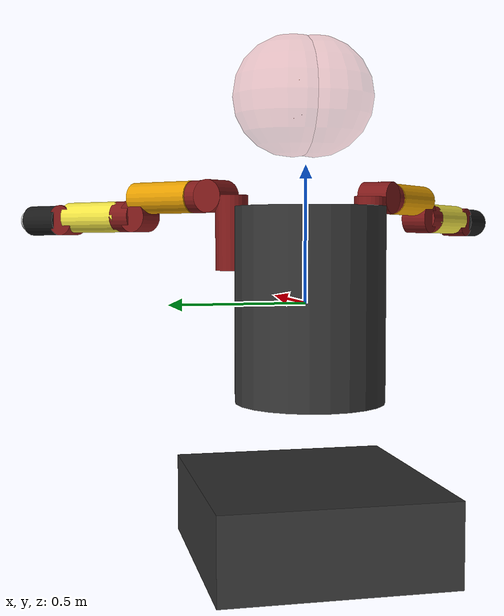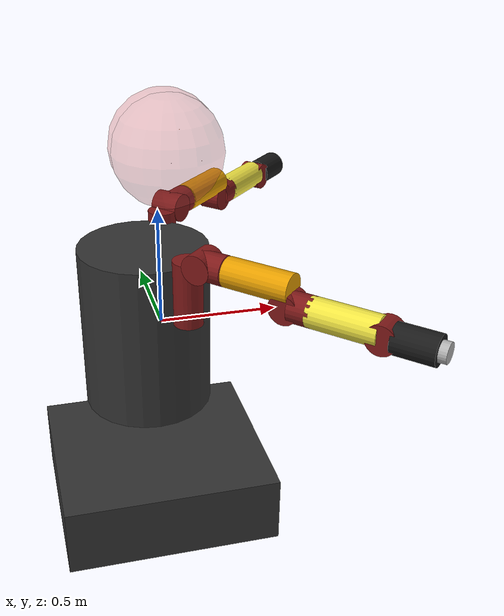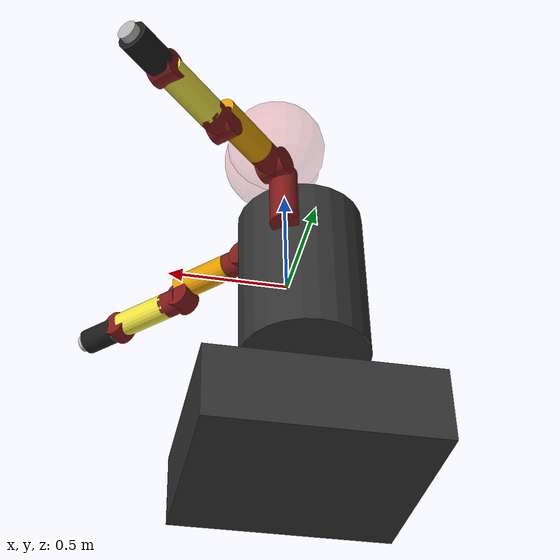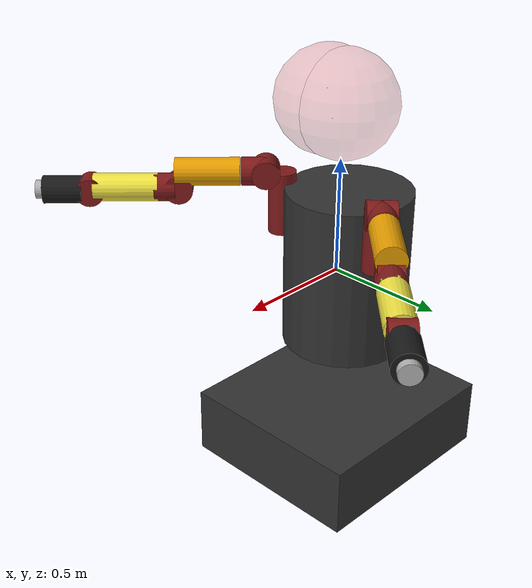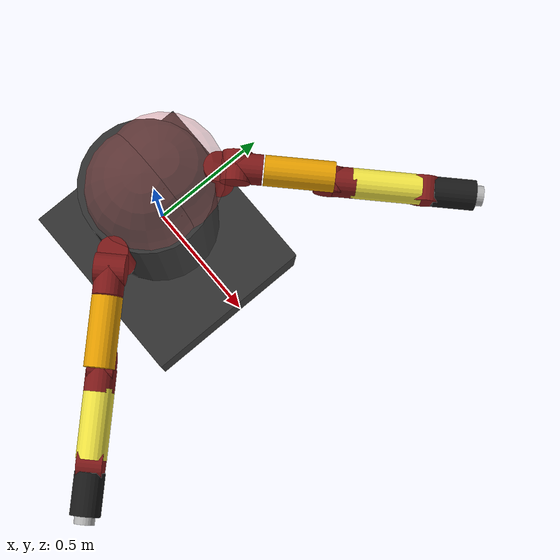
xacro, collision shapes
<?xml version="1.0" ?>
<robot name="baxter" xmlns:xacro="http://www.ros.org/wiki/xacro">

  <xacro:arg name="left_reflex"     default="false"/>
  <xacro:arg name="left_gripper"    default="false"/>
  <xacro:arg name="left_ft_sensor"  default="false"/>
  <xacro:arg name="left_push_stick" default="false"/>

  <xacro:arg name="right_reflex"     default="false"/>
  <xacro:arg name="right_gripper"    default="false"/>
  <xacro:arg name="right_ft_sensor"  default="false"/>
  <xacro:arg name="right_push_stick" default="false"/>

  <xacro:arg name="baxter_sensors" default="false"/>

  <xacro:arg name="gazebo"         default="true"/>
  <xacro:arg name="use_sim_force"  default="true"/>

  <!-- Baxter robot -->
  <xacro:include filename="$(find ll4ma_robots_description)/urdf/baxter/baxter.urdf.xacro"/>

  <!-- Baxter grippers -->
  <xacro:if value="$(arg left_gripper)">
    <include filename="$(find ll4ma_robots_description)/urdf/baxter/baxter_left_gripper.xacro"/>
  </xacro:if>
  <xacro:if value="$(arg right_gripper)">
    <include filename="$(find ll4ma_robots_description)/urdf/baxter/baxter_right_gripper.xacro"/>
  </xacro:if>

  <!-- Reflex hand -->
  <xacro:if value="$(arg left_reflex)">
    <!-- Hand  -->
    <xacro:include filename="$(find ll4ma_robots_description)/urdf/reflex/reflex.urdf.xacro"/>
    <!-- Mount -->
    <xacro:include
	filename="$(find ll4ma_robots_description)/urdf/mounts/baxter_reflex_mount.urdf.xacro">
      <xacro:arg name="left_reflex"  value="true"/>
      <xacro:arg name="right_reflex" value="false"/>
    </xacro:include>
  </xacro:if>
  <xacro:if value="$(arg right_reflex)">
    <!-- Hand  -->
    <xacro:include filename="$(find ll4ma_robots_description)/urdf/reflex/reflex.urdf.xacro"/>
    <!-- Mount -->
    <xacro:include
	filename="$(find ll4ma_robots_description)/urdf/mounts/baxter_reflex_mount.urdf.xacro">
      <xacro:arg name="left_reflex"  value="false"/>
      <xacro:arg name="right_reflex" value="true"/>
    </xacro:include>
  </xacro:if>

  <!-- Optoforce force sensor -->
  <xacro:if value="$(arg left_ft_sensor)">
    <xacro:include
  	filename="$(find ll4ma_robots_description)/urdf/force_sensors/optoforce_sensor.urdf.xacro"/>
    <xacro:include
	filename="$(find ll4ma_robots_description)/urdf/mounts/baxter_optoforce_mount.urdf.xacro"/>

    <xacro:baxter_optoforce_mount/>

    <joint name="baxter_to_optoforce_mount" type="fixed">
      <origin xyz="0 0 0" rpy="0 0 0" />
      <parent link="left_hand" />
      <child link="baxter_optoforce_mount_link" />
    </joint>

    <joint name="optoforce_mount_to_optoforce" type="fixed">
      <origin xyz="0 0 0" rpy="0 0 ${pi}" />
      <parent link="baxter_optoforce_mount_link" />
      <child link="optoforce_model_link" />
    </joint>

  </xacro:if>

  <xacro:if value="$(arg right_ft_sensor)">
    <xacro:include
  	filename="$(find ll4ma_robots_description)/urdf/force_sensors/optoforce_sensor.urdf.xacro"/>
    <xacro:include
	filename="$(find ll4ma_robots_description)/urdf/mounts/baxter_optoforce_mount.urdf.xacro"/>

    <xacro:baxter_optoforce_mount/>

    <joint name="baxter_to_optoforce_mount" type="fixed">
      <origin xyz="-0.013 0 0" rpy="0 0 -${pi/2}" />
      <parent link="right_hand" />
      <child link="baxter_optoforce_mount_link" />
    </joint>

    <joint name="optoforce_mount_to_optoforce" type="fixed">
      <origin xyz="0 0 0.01" rpy="0 0 ${-0.825 + pi}" />
      <parent link="baxter_optoforce_mount_link" />
      <child link="optoforce_model_link" />
    </joint>

  </xacro:if>

  <!-- Push stick -->
  <xacro:if value="$(arg left_push_stick)">
    <xacro:include
	filename="$(find ll4ma_robots_description)/urdf/end_effectors/push_stick.urdf.xacro"/>

    <xacro:unless value="$(arg left_ft_sensor)">
      <xacro:include
	  filename="$(find ll4ma_robots_description)/urdf/mounts/baxter_push_stick_mount.urdf.xacro"/>

      <xacro:baxter_push_stick_mount/>
      <xacro:push_stick/>

      <joint name="baxter_mount_to_push_stick" type="fixed">
	<origin xyz="-0.0837 -0.028 -0.0685" rpy="0 0.6 0" />
	<parent link="baxter_push_stick_mount_link" />
	<child link="push_stick_link" />
      </joint>

    </xacro:unless>

    <xacro:if value="$(arg left_ft_sensor)">
      <xacro:include
	  filename="$(find ll4ma_robots_description)/urdf/mounts/optoforce_push_stick_mount.urdf.xacro"/>
      <xacro:optoforce_push_stick_mount/>
      <xacro:push_stick/>

      <joint name="optoforce_to_push_stick_mount" type="fixed">
      	<origin xyz="0 0 0.015" rpy="0 0 0" />
      	<parent link="optoforce_model_link" />
      	<child link="optoforce_push_stick_mount_link" />
      </joint>

      <joint name="optoforce_mount_to_push_stick" type="fixed">
	<origin xyz="0 0 0.0051" rpy="${pi/2} 0 0" />
	<parent link="optoforce_push_stick_mount_link" />
	<child link="push_stick_link" />
      </joint>

    </xacro:if>
  </xacro:if>

  <xacro:if value="$(arg right_push_stick)">
    <xacro:include
	filename="$(find ll4ma_robots_description)/urdf/end_effectors/push_stick.urdf.xacro"/>

    <xacro:unless value="$(arg right_ft_sensor)">
      <xacro:include
	  filename="$(find ll4ma_robots_description)/urdf/mounts/baxter_push_stick_mount.urdf.xacro"/>

      <xacro:baxter_push_stick_mount/>
      <xacro:push_stick/>

      <joint name="baxter_mount_to_push_stick" type="fixed">
	<origin xyz="-0.0837 -0.028 -0.0685" rpy="0 0.6 0" />
	<parent link="baxter_push_stick_mount_link" />
	<child link="push_stick_link" />
      </joint>

    </xacro:unless>

    <xacro:if value="$(arg right_ft_sensor)">
      <xacro:include
	  filename="$(find ll4ma_robots_description)/urdf/mounts/optoforce_push_stick_mount.urdf.xacro"/>
      <xacro:optoforce_push_stick_mount/>
      <xacro:push_stick/>

      <joint name="optoforce_to_push_stick_mount" type="fixed">
      	<origin xyz="0 0 0.035" rpy="0 0 0" />
      	<parent link="optoforce_model_link" />
      	<child link="optoforce_push_stick_mount_link" />
      </joint>

      <joint name="optoforce_mount_to_push_stick" type="fixed">
	<origin xyz="0 0 0.01" rpy="0 0 0" />
	<parent link="optoforce_push_stick_mount_link" />
	<child link="push_stick_link" />
      </joint>

    </xacro:if>
  </xacro:if>

  <!-- Gazebo -->
  <xacro:if value="$(arg gazebo)">
    <xacro:include filename="$(find ll4ma_robots_description)/urdf/baxter/baxter.gazebo.xacro">
      <xacro:arg name="ft_sensor"      value="$(arg ft_sensor)"/>
      <xacro:arg name="use_sim_force"  value="$(arg use_sim_force)"/>
      <xacro:arg name="left_gripper"   value="$(arg left_gripper)"/>
      <xacro:arg name="right_gripper"  value="$(arg right_gripper)"/>
      <xacro:arg name="baxter_sensors" value="$(arg baxter_sensors)"/>
    </xacro:include>
  </xacro:if>

</robot>

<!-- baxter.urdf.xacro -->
<!-- URDF pulled from parameter server for Baxter 1 (left robot, SN:011305P0014)  -->
<!-- in Large Robotics Lab.                                                       -->
<robot xmlns:xacro="http://www.ros.org/wiki/xacro" name="baxter">

  <!-- ================================= Links ================================= -->

  <link name="base">
    <inertial>
      <origin rpy="0 0 0" xyz="0 0 0"/>
      <mass value="0.0001"/>
      <inertia ixx="1e-08" ixy="0" ixz="0" iyy="1e-08" iyz="0" izz="1e-08"/>
    </inertial>
  </link>

  <link name="torso">
    <visual>
      <origin rpy="0 0 0" xyz="0 0 0"/>
      <geometry>
        <mesh filename="package://ll4ma_robots_description/meshes/baxter/body/base_link.dae"/>
      </geometry>
      <material name="darkgray">
        <color rgba=".2 .2 .2 1"/>
      </material>
    </visual>
    <collision>
      <origin rpy="0 0 0" xyz="-0.065 0 0.0"/>
      <geometry>
        <cylinder length="0.7" radius="0.27"/>
      </geometry>
    </collision>
    <inertial>
      <origin rpy="0 0 0" xyz="0.000000 0.000000 0.000000"/>
      <mass value="35.336455"/>
      <inertia ixx="1.849155" ixy="-0.000354" ixz="-0.154188"
	       iyy="1.662671" iyz="0.003292" izz="0.802239"/>
    </inertial>
  </link>

  <link name="left_torso_itb">
    <inertial>
      <origin rpy="0 0 0" xyz="0.000000 0.000000 0.000000"/>
      <mass value="0.0001"/>
      <inertia ixx="1e-08" ixy="0" ixz="0" iyy="1e-08" iyz="0" izz="1e-08"/>
    </inertial>
  </link>

  <link name="right_torso_itb">
    <inertial>
      <origin rpy="0 0 0" xyz="0.000000 0.000000 0.000000"/>
      <mass value="0.0001"/>
      <inertia ixx="1e-08" ixy="0" ixz="0" iyy="1e-08" iyz="0" izz="1e-08"/>
    </inertial>
  </link>

  <link name="head">
    <visual>
      <origin rpy="0 0 0" xyz="0 0 .00953"/>
      <geometry>
        <mesh filename="package://ll4ma_robots_description/meshes/baxter/head/h0.dae"/>
      </geometry>
      <material name="darkgray">
        <color rgba=".2 .2 .2 1"/>
      </material>
    </visual>
    <collision>
      <origin rpy="0 0 0" xyz="0.0 0 0.0"/>
      <geometry>
        <sphere radius="0.001"/>
      </geometry>
    </collision>
    <inertial>
      <origin rpy="0 0 0" xyz="0 0 0"/>
      <mass value="0.547767"/>
      <inertia ixx="0.004641" ixy="0.000159" ixz="0.000242"
	       iyy="0.003295" iyz="-0.001324" izz="0.003415"/>
    </inertial>
  </link>

  <link name="sonar_ring">
    <collision>
      <origin rpy="0 0 0" xyz="0.0 0 0.0"/>
      <geometry>
        <sphere radius="0.001"/>
      </geometry>
    </collision>
    <inertial>
      <origin rpy="0 0 0" xyz="0 0 0"/>
      <mass value="0.0001"/>
      <inertia ixx="1e-08" ixy="0" ixz="0" iyy="1e-08" iyz="0" izz="1e-08"/>
    </inertial>
  </link>

  <link name="screen">
    <visual>
      <origin rpy="0 -1.57079632679 0" xyz="0 -.00953 -.0347"/>
      <geometry>
        <mesh filename="package://ll4ma_robots_description/meshes/baxter/head/h1.dae"/>
      </geometry>
      <material name="darkred">
        <color rgba=".5 .1 .1 1"/>
      </material>
    </visual>
    <collision>
      <origin rpy="0 0 0" xyz="0.0 0 0.0"/>
      <geometry>
        <sphere radius="0.001"/>
      </geometry>
    </collision>
    <inertial>
      <origin rpy="0 0 0" xyz="0 0 0"/>
      <mass value="0.440171"/>
      <inertia ixx="0.004006" ixy="0.000230" ixz="0.000002"
	       iyy="0.002800" iyz="0.000029" izz="0.001509"/>
    </inertial>
  </link>

  <link name="display">
    <inertial>
      <origin rpy="0 0 0" xyz="0 0 0"/>
      <mass value="0.0001"/>
      <inertia ixx="1e-08" ixy="0" ixz="0" iyy="1e-08" iyz="0" izz="1e-08"/>
    </inertial>
  </link>

  <link name="head_camera">
    <inertial>
      <origin rpy="0 0 0" xyz="0 0 0"/>
      <mass value="0.0001"/>
      <inertia ixx="1e-08" ixy="0" ixz="0" iyy="1e-08" iyz="0" izz="1e-08"/>
    </inertial>
  </link>

  <link name="dummyhead1">
    <inertial>
      <origin rpy="0 0 0" xyz="0 0 0"/>
      <mass value="0.0001"/>
      <inertia ixx="1e-08" ixy="0" ixz="0" iyy="1e-08" iyz="0" izz="1e-08"/>
    </inertial>
  </link>

  <link name="collision_head_link_1">
    <visual>
      <origin rpy="0 0 0" xyz="0 0 0"/>
      <geometry>
        <sphere radius="0.001"/>
      </geometry>
      <material name="red">
        <color rgba="0.8 0.3 0.3 0.3"/>
      </material>
    </visual>
    <collision>
      <origin rpy="0 0 0.0" xyz="-0.07 -0.04 0.0"/>
      <geometry>
        <sphere radius="0.22"/>
      </geometry>
    </collision>
    <inertial>
      <origin rpy="0 0 0" xyz="0 0 0"/>
      <mass value="0.0001"/>
      <inertia ixx="1e-08" ixy="0" ixz="0" iyy="1e-08" iyz="0" izz="1e-08"/>
    </inertial>
  </link>

  <link name="collision_head_link_2">
    <visual>
      <origin rpy="0 0 0" xyz="0 0 0"/>
      <geometry>
        <sphere radius="0.001"/>
      </geometry>
      <material name="red">
        <color rgba="0.8 0.3 0.3 0.3"/>
      </material>
    </visual>
    <collision>
      <origin rpy="0 0 0" xyz="-0.07 0.04 0.00"/>
      <geometry>
        <sphere radius="0.22"/>
      </geometry>
    </collision>
    <inertial>
      <origin rpy="0 0 0" xyz="0 0 0"/>
      <mass value="0.0001"/>
      <inertia ixx="1e-08" ixy="0" ixz="0" iyy="1e-08" iyz="0" izz="1e-08"/>
    </inertial>
  </link>

  <link name="right_arm_mount">
    <!-- all defaults -->
    <inertial>
      <origin rpy="0 0 0" xyz="0 0 0"/>
      <mass value="0.0001"/>
      <inertia ixx="1e-08" ixy="0" ixz="0" iyy="1e-08" iyz="0" izz="1e-08"/>
    </inertial>
  </link>

  <link name="right_upper_shoulder">
    <visual>
      <origin rpy="0 0 0" xyz="0 0 0"/>
      <geometry>
        <mesh filename="package://ll4ma_robots_description/meshes/baxter/arms/s0.dae"/>
      </geometry>
      <material name="darkred">
        <color rgba=".5 .1 .1 1"/>
      </material>
    </visual>
    <collision>
      <origin rpy="0 0 0" xyz="0 0 0.1361"/>
      <geometry>
        <cylinder length="0.2722" radius="0.06"/>
      </geometry>
    </collision>
    <inertial>
      <origin rpy="0 0 0" xyz="0.01783 0.00086 0.19127"/>
      <mass value="5.70044"/>
      <inertia ixx="0.04709102262" ixy="0.00012787556" ixz="0.00614870039"
	       iyy="0.03766976455" iyz="0.00078086899" izz="0.03595988478"/>
    </inertial>
  </link>

  <link name="right_lower_shoulder">
    <visual>
      <origin rpy="0 0 0" xyz="0 0 0"/>
      <geometry>
        <mesh filename="package://ll4ma_robots_description/meshes/baxter/arms/s1.dae"/>
      </geometry>
      <material name="darkred">
        <color rgba=".5 .1 .1 1"/>
      </material>
    </visual>
    <collision>
      <origin rpy="0 0 0" xyz="0 0 0"/>
      <geometry>
        <cylinder length="0.12" radius="0.06"/>
      </geometry>
    </collision>
    <inertial>
      <origin rpy="0 0 0" xyz="0.06845 0.00269 -0.00529"/>
      <mass value="3.22698"/>
      <inertia ixx="0.01175209419" ixy="-0.00030096398" ixz="0.00207675762"
	       iyy="0.0278859752" iyz="-0.00018821993" izz="0.02078749298"/>
    </inertial>
  </link>

  <link name="right_upper_elbow">
    <visual>
      <origin rpy="0 0 0" xyz="0 0 0"/>
      <geometry>
        <mesh filename="package://ll4ma_robots_description/meshes/baxter/arms/e0.dae"/>
      </geometry>
      <material name="darkred">
        <color rgba=".5 .1 .1 1"/>
      </material>
    </visual>
    <collision>
      <origin rpy="0 0 0" xyz="0 0 -0.0535"/>
      <geometry>
        <cylinder length="0.107" radius="0.06"/>
      </geometry>
    </collision>
    <inertial>
      <origin rpy="0 0 0" xyz="-0.00276 0.00132 0.18086"/>
      <mass value="4.31272"/>
      <inertia ixx="0.02661733557" ixy="0.00029270634" ixz="0.00392189887"
	       iyy="0.02844355207" iyz="0.0010838933" izz="0.01248008322"/>
    </inertial>
  </link>

  <link name="right_upper_elbow_visual">
    <collision>
      <origin rpy="0 0 0" xyz="0 0 0.1365"/>
      <geometry>
        <cylinder length="0.273" radius="0.06"/>
      </geometry>
    </collision>
    <inertial>
      <origin rpy="0 0 0" xyz="0 0 0"/>
      <mass value="0.0001"/>
      <inertia ixx="1e-08" ixy="0" ixz="0" iyy="1e-08" iyz="0" izz="1e-08"/>
    </inertial>
  </link>

  <link name="right_lower_elbow">
    <visual>
      <origin rpy="0 0 0" xyz="0 0 0"/>
      <geometry>
        <mesh filename="package://ll4ma_robots_description/meshes/baxter/arms/e1.dae"/>
      </geometry>
      <material name="darkred">
        <color rgba=".5 .1 .1 1"/>
      </material>
    </visual>
    <collision>
      <origin rpy="0 0 0" xyz="0.0 0.0 0.0"/>
      <geometry>
        <cylinder length="0.10" radius="0.06"/>
      </geometry>
    </collision>
    <inertial>
      <origin rpy="0 0 0" xyz="0.02611 0.00159 -0.01117"/>
      <mass value="2.07206"/>
      <inertia ixx="0.00711582686" ixy="0.00036036173" ixz="0.0007459496"
	       iyy="0.01318227876" iyz="-0.00019663418" izz="0.00926852064"/>
    </inertial>
  </link>

  <link name="right_upper_forearm">
    <visual>
      <origin rpy="0 0 0" xyz="0 0 0"/>
      <geometry>
        <mesh filename="package://ll4ma_robots_description/meshes/baxter/arms/w0.dae"/>
      </geometry>
      <material name="darkred">
        <color rgba=".5 .1 .1 1"/>
      </material>
    </visual>
    <collision>
      <origin rpy="0 0 0" xyz="0 0 -0.044"/>
      <geometry>
        <cylinder length="0.088" radius="0.06"/>
      </geometry>
    </collision>
    <inertial>
      <origin rpy="0 0 0" xyz="-0.00168 0.0046 0.13952"/>
      <mass value="2.24665"/>
      <inertia ixx="0.01667742825" ixy="0.00018403705" ixz="0.00018657629"
	       iyy="0.01675457264" iyz="-0.00064732352" izz="0.0037463115"/>
    </inertial>
  </link>

  <link name="right_upper_forearm_visual">
    <collision>
      <origin rpy="0 0 0" xyz="0 0 0.136"/>
      <geometry>
        <cylinder length="0.272" radius="0.06"/>
      </geometry>
    </collision>
    <inertial>
      <origin rpy="0 0 0" xyz="0 0 0"/>
      <mass value="0.0001"/>
      <inertia ixx="1e-08" ixy="0" ixz="0" iyy="1e-08" iyz="0" izz="1e-08"/>
    </inertial>
  </link>

  <link name="right_arm_itb">
    <inertial>
      <origin rpy="0 0 0" xyz="0.000000 0.000000 0.000000"/>
      <mass value="0.0001"/>
      <inertia ixx="1e-08" ixy="0" ixz="0" iyy="1e-08" iyz="0" izz="1e-08"/>
    </inertial>
  </link>

  <link name="right_lower_forearm">
    <visual>
      <origin rpy="0 0 0" xyz="0 0 0"/>
      <geometry>
        <mesh filename="package://ll4ma_robots_description/meshes/baxter/arms/w1.dae"/>
      </geometry>
      <material name="darkred">
        <color rgba=".5 .1 .1 1"/>
      </material>
    </visual>
    <collision>
      <origin rpy="0 0 0" xyz="0 0 0"/>
      <geometry>
        <cylinder length="0.10" radius="0.06"/>
      </geometry>
    </collision>
    <inertial>
      <origin rpy="0 0 0" xyz="0.06041 0.00697 0.006"/>
      <mass value="1.60979"/>
      <inertia ixx="0.00387607152" ixy="-0.00044384784" ixz="-0.00021115038"
	       iyy="0.00700537914" iyz="0.00015348067" izz="0.0055275524"/>
    </inertial>
  </link>

  <link name="right_wrist">
    <visual>
      <origin rpy="0 0 0" xyz="0 0 0"/>
      <geometry>
        <mesh filename="package://ll4ma_robots_description/meshes/baxter/arms/w2.dae"/>
      </geometry>
      <material name="lightgrey">
        <color rgba=".1 .1 .1 1"/>
      </material>
    </visual>
    <collision>
      <origin rpy="0 0 0" xyz="0 0 0"/>
      <geometry>
        <cylinder length="0.165" radius="0.06"/>
      </geometry>
    </collision>
    <inertial>
      <origin rpy="0 0 0" xyz="0.00198 0.00125 0.01855"/>
      <mass value="0.35093"/>
      <inertia ixx="0.00025289155" ixy="0.00000575311" ixz="-0.00000159345"
	       iyy="0.0002688601" iyz="-0.00000519818" izz="0.0003074118"/>
    </inertial>
  </link>

  <link name="right_hand">
    <collision>
      <origin rpy="0 0 0" xyz="0 0 -0.0232"/>
      <geometry>
        <cylinder length="0.0464" radius="0.04"/>
      </geometry>
    </collision>
    <inertial>
      <origin rpy="0 0 0" xyz="0.01093 0.00042 -0.01532"/>
      <mass value="0.19125"/>
      <inertia ixx="0.00017588" ixy="0.00000147073" ixz="0.0000243633"
	       iyy="0.00021166377" iyz="0.00000172689" izz="0.00023745397"/>
    </inertial>
  </link>

  <link name="right_hand_camera">
    <inertial>
      <origin rpy="0 0 0" xyz="0 0 0"/>
      <mass value="0.0001"/>
      <inertia ixx="1e-08" ixy="0" ixz="0" iyy="1e-08" iyz="0" izz="1e-08"/>
    </inertial>
  </link>
  <link name="right_hand_camera_axis">
    <origin xyz="0 0 0" rpy="0 0 0" />
    <geometry>
      <cylinder radius="0.02" length="0.01" />
    </geometry>
    <material name="blue">
      <color rgba="0 0 1 0.8" />
    </material>
    <inertial>
      <origin rpy="0 0 0" xyz="0 0 0"/>
      <mass value="0.0001"/>
      <inertia ixx="1e-08" ixy="0" ixz="0" iyy="1e-08" iyz="0" izz="1e-08"/>
    </inertial>
  </link>

  <link name="right_hand_range">
    <inertial>
      <origin rpy="0 0 0" xyz="0 0 0"/>
      <mass value="0.0001"/>
      <inertia ixx="1e-08" ixy="0" ixz="0" iyy="1e-08" iyz="0" izz="1e-08"/>
    </inertial>
  </link>

  <link name="right_hand_accelerometer">
    <inertial>
      <origin rpy="0 0 0" xyz="0.000000 0.000000 0.000000"/>
      <mass value="0.0001"/>
      <inertia ixx="1e-08" ixy="0" ixz="0" iyy="1e-08" iyz="0" izz="1e-08"/>
    </inertial>
  </link>

  <link name="left_arm_mount">
    <!-- all defaults -->
    <inertial>
      <origin rpy="0 0 0" xyz="0 0 0"/>
      <mass value="0.0001"/>
      <inertia ixx="1e-08" ixy="0" ixz="0" iyy="1e-08" iyz="0" izz="1e-08"/>
    </inertial>
  </link>

  <link name="left_upper_shoulder">
    <visual>
      <origin rpy="0 0 0" xyz="0 0 0"/>
      <geometry>
        <mesh filename="package://ll4ma_robots_description/meshes/baxter/arms/s0.dae"/>
      </geometry>
      <material name="darkred">
        <color rgba=".5 .1 .1 1"/>
      </material>
    </visual>
    <collision>
      <origin rpy="0 0 0" xyz="0 0 0.1361"/>
      <geometry>
        <cylinder length="0.2722" radius="0.06"/>
      </geometry>
    </collision>
    <inertial>
      <origin rpy="0 0 0" xyz="0.01783 0.00086 0.19127"/>
      <mass value="5.70044"/>
      <inertia ixx="0.04709102262" ixy="0.00012787556" ixz="0.00614870039"
	       iyy="0.03766976455" iyz="0.00078086899" izz="0.03595988478"/>
    </inertial>
  </link>

  <link name="left_lower_shoulder">
    <visual>
      <origin rpy="0 0 0" xyz="0 0 0"/>
      <geometry>
        <mesh filename="package://ll4ma_robots_description/meshes/baxter/arms/s1.dae"/>
      </geometry>
      <material name="darkred">
        <color rgba=".5 .1 .1 1"/>
      </material>
    </visual>
    <collision>
      <origin rpy="0 0 0" xyz="0 0 0"/>
      <geometry>
        <cylinder length="0.12" radius="0.06"/>
      </geometry>
    </collision>
    <inertial>
      <origin rpy="0 0 0" xyz="0.06845 0.00269 -0.00529"/>
      <mass value="3.22698"/>
      <inertia ixx="0.01175209419" ixy="-0.00030096398" ixz="0.00207675762"
	       iyy="0.0278859752" iyz="-0.00018821993" izz="0.02078749298"/>
    </inertial>
  </link>

  <link name="left_upper_elbow">
    <visual>
      <origin rpy="0 0 0" xyz="0 0 0"/>
      <geometry>
        <mesh filename="package://ll4ma_robots_description/meshes/baxter/arms/e0.dae"/>
      </geometry>
      <material name="darkred">
        <color rgba=".5 .1 .1 1"/>
      </material>
    </visual>
    <collision>
      <origin rpy="0 0 0" xyz="0 0 -0.0535"/>
      <geometry>
        <cylinder length="0.107" radius="0.06"/>
      </geometry>
    </collision>
    <inertial>
      <origin rpy="0 0 0" xyz="-0.00276 0.00132 0.18086"/>
      <mass value="4.31272"/>
      <inertia ixx="0.02661733557" ixy="0.00029270634" ixz="0.00392189887"
	       iyy="0.02844355207" iyz="0.0010838933" izz="0.01248008322"/>
    </inertial>
  </link>

  <link name="left_upper_elbow_visual">
    <collision>
      <origin rpy="0 0 0" xyz="0 0 0.1365"/>
      <geometry>
        <cylinder length="0.273" radius="0.06"/>
      </geometry>
    </collision>
    <inertial>
      <origin rpy="0 0 0" xyz="0 0 0"/>
      <mass value="0.0001"/>
      <inertia ixx="1e-08" ixy="0" ixz="0" iyy="1e-08" iyz="0" izz="1e-08"/>
    </inertial>
  </link>

  <link name="left_lower_elbow">
    <visual>
      <origin rpy="0 0 0" xyz="0 0 0"/>
      <geometry>
        <mesh filename="package://ll4ma_robots_description/meshes/baxter/arms/e1.dae"/>
      </geometry>
      <material name="darkred">
        <color rgba=".5 .1 .1 1"/>
      </material>
    </visual>
    <collision>
      <origin rpy="0 0 0" xyz="0.0 0.0 0.0"/>
      <geometry>
        <cylinder length="0.10" radius="0.06"/>
      </geometry>
    </collision>
    <inertial>
      <origin rpy="0 0 0" xyz="0.02611 0.00159 -0.01117"/>
      <mass value="2.07206"/>
      <inertia ixx="0.00711582686" ixy="0.00036036173" ixz="0.0007459496"
	       iyy="0.01318227876" iyz="-0.00019663418" izz="0.00926852064"/>
    </inertial>
  </link>

  <link name="left_upper_forearm">
    <visual>
      <origin rpy="0 0 0" xyz="0 0 0"/>
      <geometry>
        <mesh filename="package://ll4ma_robots_description/meshes/baxter/arms/w0.dae"/>
      </geometry>
      <material name="darkred">
        <color rgba=".5 .1 .1 1"/>
      </material>
    </visual>
    <collision>
      <origin rpy="0 0 0" xyz="0 0 -0.044"/>
      <geometry>
        <cylinder length="0.088" radius="0.06"/>
      </geometry>
    </collision>
    <inertial>
      <origin rpy="0 0 0" xyz="-0.00168 0.0046 0.13952"/>
      <mass value="2.24665"/>
      <inertia ixx="0.01667742825" ixy="0.00018403705" ixz="0.00018657629"
	       iyy="0.01675457264" iyz="-0.00064732352" izz="0.0037463115"/>
    </inertial>
  </link>

  <link name="left_upper_forearm_visual">
    <collision>
      <origin rpy="0 0 0" xyz="0 0 0.136"/>
      <geometry>
        <cylinder length="0.272" radius="0.06"/>
      </geometry>
    </collision>
    <inertial>
      <origin rpy="0 0 0" xyz="0 0 0"/>
      <mass value="0.0001"/>
      <inertia ixx="1e-08" ixy="0" ixz="0" iyy="1e-08" iyz="0" izz="1e-08"/>
    </inertial>
  </link>

  <link name="left_arm_itb">
    <inertial>
      <origin rpy="0 0 0" xyz="0.000000 0.000000 0.000000"/>
      <mass value="0.0001"/>
      <inertia ixx="1e-08" ixy="0" ixz="0" iyy="1e-08" iyz="0" izz="1e-08"/>
    </inertial>
  </link>

  <link name="left_lower_forearm">
    <visual>
      <origin rpy="0 0 0" xyz="0 0 0"/>
      <geometry>
        <mesh filename="package://ll4ma_robots_description/meshes/baxter/arms/w1.dae"/>
      </geometry>
      <material name="darkred">
        <color rgba=".5 .1 .1 1"/>
      </material>
    </visual>
    <collision>
      <origin rpy="0 0 0" xyz="0 0 0"/>
      <geometry>
        <cylinder length="0.10" radius="0.06"/>
      </geometry>
    </collision>
    <inertial>
      <origin rpy="0 0 0" xyz="0.06041 0.00697 0.006"/>
      <mass value="1.60979"/>
      <inertia ixx="0.00387607152" ixy="-0.00044384784" ixz="-0.00021115038"
	       iyy="0.00700537914" iyz="0.00015348067" izz="0.0055275524"/>
    </inertial>
  </link>

  <link name="left_wrist">
    <visual>
      <origin rpy="0 0 0" xyz="0 0 0"/>
      <geometry>
        <mesh filename="package://ll4ma_robots_description/meshes/baxter/arms/w2.dae"/>
      </geometry>
      <material name="lightgrey">
        <color rgba=".1 .1 .1 1"/>
      </material>
    </visual>
    <collision>
      <origin rpy="0 0 0" xyz="0 0 0"/>
      <geometry>
        <cylinder length="0.165" radius="0.06"/>
      </geometry>
    </collision>
    <inertial>
      <origin rpy="0 0 0" xyz="0.00198 0.00125 0.01855"/>
      <mass value="0.35093"/>
      <inertia ixx="0.00025289155" ixy="0.00000575311" ixz="-0.00000159345"
	       iyy="0.0002688601" iyz="-0.00000519818" izz="0.0003074118"/>
    </inertial>
  </link>

  <link name="left_hand">
    <collision>
      <origin rpy="0 0 0" xyz="0 0 -0.0232"/>
      <geometry>
        <cylinder length="0.0464" radius="0.04"/>
      </geometry>
    </collision>
    <inertial>
      <origin rpy="0 0 0" xyz="0.01093 0.00042 -0.01532"/>
      <mass value="0.19125"/>
      <inertia ixx="0.00017588" ixy="0.00000147073" ixz="0.0000243633"
	       iyy="0.00021166377" iyz="0.00000172689" izz="0.00023745397"/>
    </inertial>
  </link>

  <link name="left_hand_camera">
    <inertial>
      <origin rpy="0 0 0" xyz="0 0 0"/>
      <mass value="0.0001"/>
      <inertia ixx="1e-08" ixy="0" ixz="0" iyy="1e-08" iyz="0" izz="1e-08"/>
    </inertial>
  </link>

  <link name="left_hand_camera_axis">
    <inertial>
      <origin rpy="0 0 0" xyz="0 0 0"/>
      <mass value="0.0001"/>
      <inertia ixx="1e-08" ixy="0" ixz="0" iyy="1e-08" iyz="0" izz="1e-08"/>
    </inertial>
  </link>

  <link name="left_hand_range">
    <inertial>
      <origin rpy="0 0 0" xyz="0 0 0"/>
      <mass value="0.0001"/>
      <inertia ixx="1e-08" ixy="0" ixz="0" iyy="1e-08" iyz="0" izz="1e-08"/>
    </inertial>
  </link>

  <link name="left_hand_accelerometer">
    <inertial>
      <origin rpy="0 0 0" xyz="0.000000 0.000000 0.000000"/>
      <mass value="0.0001"/>
      <inertia ixx="1e-08" ixy="0" ixz="0" iyy="1e-08" iyz="0" izz="1e-08"/>
    </inertial>
  </link>

  <link name="pedestal">
    <visual>
      <origin xyz="0 0 0" rpy="0 0 0" />
      <geometry>
  	<mesh filename="package://ll4ma_robots_description/meshes/baxter/body/pedestal.dae" />
      </geometry>
      <material name="darkgray">
  	<color rgba=".2 .2 .2 1" />
      </material>
    </visual>
    <collision>
      <origin rpy="0 0 0" xyz="-0.04 0 -0.775"/>
      <geometry>
        <box size="0.92 0.83 0.3"/>
      </geometry>
    </collision>
    <inertial>
      <origin xyz="0 0 0" rpy="0 0 0" />
      <mass value="60.86397744" />
      <inertia ixx="5.0635929" ixy="0.00103417" ixz="0.80199628"
	       iyy="6.08689388" iyz="0.00105311" izz="4.96191932" />
    </inertial>
  </link>

  <!-- ==================================== Joints ====================================-->

  <joint name="collision_head_1" type="fixed">
    <origin rpy="0 0 0" xyz="0.11 0 0.75"/>
    <parent link="base"/>
    <child link="collision_head_link_1"/>
  </joint>

  <joint name="collision_head_2" type="fixed">
    <origin rpy="0 0 0" xyz="0.11 0 0.75"/>
    <parent link="base"/>
    <child link="collision_head_link_2"/>
  </joint>

  <joint name="dummy" type="fixed">
    <origin rpy="0 0 0" xyz="0 0 0"/>
    <parent link="head"/>
    <child link="dummyhead1"/>
  </joint>

  <joint name="torso_t0" type="fixed">
    <origin rpy="0 0 0" xyz="0 0 0"/>
    <parent link="base"/>
    <child link="torso"/>
    <limit effort="50000" lower="-3.01" upper="3.01" velocity="10000"/>
  </joint>

  <joint name="left_torso_itb_fixed" type="fixed">
    <origin rpy="-1.57079632679 3.1415 0" xyz="-0.08897 0.15593 0.389125"/>
    <parent link="torso"/>
    <child link="left_torso_itb"/>
  </joint>

  <joint name="right_torso_itb_fixed" type="fixed">
    <origin rpy="1.57079632679 0 0" xyz="-0.08897 -0.15593 0.389125"/>
    <parent link="torso"/>
    <child link="right_torso_itb"/>
  </joint>

  <joint name="head_pan" type="revolute">
    <origin rpy="0 0 0" xyz="0.06 0 0.686"/>
    <axis xyz="0 0 1"/>
    <parent link="torso"/>
    <child link="head"/>
    <limit effort="50000" lower="-1.3963" upper="1.3963" velocity="10000"/>
    <dynamics damping="0.7" friction="0.0"/>
  </joint>

  <joint name="head_nod" type="fixed">
    <origin rpy="1.75057 0 1.57079632679" xyz=".1227 0 0"/>
    <parent link="head"/>
    <child link="screen"/>
  </joint>

  <joint name="head_camera" type="fixed">
    <origin rpy="1.75057 0 1.57079632679" xyz="0.12839 0 0.06368"/>
    <parent link="head"/>
    <child link="head_camera"/>
  </joint>

  <joint name="display_joint" type="fixed">
    <origin rpy="0 0 0" xyz="0.0 -0.016 0.0"/>
    <parent link="screen"/>
    <child link="display"/>
  </joint>

  <joint name="sonar_s0" type="fixed">
    <origin rpy="0 0 0" xyz="0.0947 0 .817"/>
    <axis xyz="0 0 1"/>
    <parent link="torso"/>
    <child link="sonar_ring"/>
  </joint>

  <joint name="right_torso_arm_mount" type="fixed">
    <origin rpy="0.0143543870151 0.00737932672606 -0.797212104518"
	    xyz="0.0236451056339 -0.219656837629 0.107735299118"/>
    <parent link="torso"/>
    <child link="right_arm_mount"/>
  </joint>

  <joint name="right_s0" type="revolute">
    <origin rpy="0 0 0" xyz="0.055695 0 0.011038"/>
    <axis xyz="0 0 1"/>
    <parent link="right_arm_mount"/>
    <child link="right_upper_shoulder"/>
    <limit effort="50.0" lower="-1.70167993878" upper="1.70167993878" velocity="1.5"/>
    <dynamics damping="0.7" friction="0.0"/>
  </joint>

  <joint name="right_s1" type="revolute">
    <origin rpy="-1.57079632679 0 0" xyz="0.069 0 0.27035"/>
    <axis xyz="0 0 1"/>
    <parent link="right_upper_shoulder"/>
    <child link="right_lower_shoulder"/>
    <limit effort="50.0" lower="-2.147" upper="1.047" velocity="1.5"/>
    <dynamics damping="0.7" friction="0.0"/>
  </joint>

  <joint name="right_e0" type="revolute">
    <origin rpy="1.57079632679 0 1.57079632679" xyz="0.102 0 0"/>
    <axis xyz="0 0 1"/>
    <parent link="right_lower_shoulder"/>
    <child link="right_upper_elbow"/>
    <limit effort="50.0" lower="-3.05417993878" upper="3.05417993878" velocity="1.5"/>
    <dynamics damping="0.7" friction="0.0"/>
  </joint>

  <joint name="right_e0_fixed" type="fixed">
    <origin rpy="1.57079632679 0 1.57079632679" xyz="0.107 0 0"/>
    <axis xyz="0 0 1"/>
    <parent link="right_lower_shoulder"/>
    <child link="right_upper_elbow_visual"/>
  </joint>

  <joint name="right_e1" type="revolute">
    <origin rpy="-1.57079632679 -1.57079632679 0" xyz="0.069 0 0.26242"/>
    <axis xyz="0 0 1"/>
    <parent link="right_upper_elbow"/>
    <child link="right_lower_elbow"/>
    <limit effort="50.0" lower="-0.05" upper="2.618" velocity="1.5"/>
    <dynamics damping="0.7" friction="0.0"/>
  </joint>

  <joint name="right_w0" type="revolute">
    <origin rpy="1.57079632679 0 1.57079632679" xyz="0.10359 0 0"/>
    <axis xyz="0 0 1"/>
    <parent link="right_lower_elbow"/>
    <child link="right_upper_forearm"/>
    <limit effort="15.0" lower="-3.059" upper="3.059" velocity="4.0"/>
    <dynamics damping="0.7" friction="0.0"/>
  </joint>

  <joint name="right_w0_fixed" type="fixed">
    <origin rpy="1.57079632679 0 1.57079632679" xyz="0.088 0 0"/>
    <axis xyz="0 0 1"/>
    <parent link="right_lower_elbow"/>
    <child link="right_upper_forearm_visual"/>
  </joint>

  <joint name="right_w0_to_itb_fixed" type="fixed">
    <origin rpy="-1.57079632679 0 1.57079632679" xyz="-0.0565 0 0.12"/>
    <axis xyz="0 0 1"/>
    <parent link="right_upper_forearm"/>
    <child link="right_arm_itb"/>
  </joint>

  <joint name="right_w1" type="revolute">
    <origin rpy="-1.57079632679 -1.57079632679 0" xyz="0.01 0 0.2707"/>
    <axis xyz="0 0 1"/>
    <parent link="right_upper_forearm"/>
    <child link="right_lower_forearm"/>
    <limit effort="15.0" lower="-1.57079632679" upper="2.094" velocity="4.0"/>
    <dynamics damping="0.7" friction="0.0"/>
  </joint>

  <joint name="right_w2" type="revolute">
    <origin rpy="1.57079632679 0 1.57079632679" xyz="0.115975 0 0"/>
    <axis xyz="0 0 1"/>
    <parent link="right_lower_forearm"/>
    <child link="right_wrist"/>
    <limit effort="15.0" lower="-3.059" upper="3.059" velocity="4.0"/>
    <dynamics damping="0.7" friction="0.0"/>
  </joint>

  <joint name="right_hand" type="fixed">
    <origin rpy="0 0 0" xyz="0 0 0.11355"/>
    <axis xyz="0 0 1"/>
    <parent link="right_wrist"/>
    <child link="right_hand"/>
  </joint>

  <joint name="right_hand_camera" type="fixed">
    <origin rpy="0 0 -1.57079633" xyz="0.03825 0.012 0.015355"/>
    <parent link="right_hand"/>
    <child link="right_hand_camera"/>
  </joint>

  <joint name="right_hand_camera_axis" type="fixed">
    <origin rpy="0 0 0" xyz="0.03825 0.012 0.015355"/>
    <parent link="right_hand"/>
    <child link="right_hand_camera_axis"/>
  </joint>

  <joint name="right_hand_range" type="fixed">
    <origin rpy="0 -1.57079632679 -1.57079632679" xyz="0.032 -0.020245 0.0288"/>
    <parent link="right_hand"/>
    <child link="right_hand_range"/>
  </joint>

  <joint name="right_hand_accelerometer" type="fixed">
    <origin rpy="0 0 0" xyz="0.00198 0.000133 -0.0146"/>
    <parent link="right_hand"/>
    <child link="right_hand_accelerometer"/>
  </joint>

  <joint name="left_torso_arm_mount" type="fixed">
    <origin rpy="-0.00380299107678 0.00469756936711 0.777687095657"
	    xyz="0.025136989353 0.219898359651 0.108827073654"/>
    <parent link="torso"/>
    <child link="left_arm_mount"/>
  </joint>

  <joint name="left_s0" type="revolute">
    <origin rpy="0 0 0" xyz="0.055695 0 0.011038"/>
    <axis xyz="0 0 1"/>
    <parent link="left_arm_mount"/>
    <child link="left_upper_shoulder"/>
    <limit effort="50.0" lower="-1.70167993878" upper="1.70167993878" velocity="1.5"/>
    <dynamics damping="0.7" friction="0.0"/>
  </joint>

  <joint name="left_s1" type="revolute">
    <origin rpy="-1.57079632679 0 0" xyz="0.069 0 0.27035"/>
    <axis xyz="0 0 1"/>
    <parent link="left_upper_shoulder"/>
    <child link="left_lower_shoulder"/>
    <limit effort="50.0" lower="-2.147" upper="1.047" velocity="1.5"/>
    <dynamics damping="0.7" friction="0.0"/>
  </joint>

  <joint name="left_e0" type="revolute">
    <origin rpy="1.57079632679 0 1.57079632679" xyz="0.102 0 0"/>
    <axis xyz="0 0 1"/>
    <parent link="left_lower_shoulder"/>
    <child link="left_upper_elbow"/>
    <limit effort="50.0" lower="-3.05417993878" upper="3.05417993878" velocity="1.5"/>
    <dynamics damping="0.7" friction="0.0"/>
  </joint>

  <joint name="left_e0_fixed" type="fixed">
    <origin rpy="1.57079632679 0 1.57079632679" xyz="0.107 0 0"/>
    <axis xyz="0 0 1"/>
    <parent link="left_lower_shoulder"/>
    <child link="left_upper_elbow_visual"/>
  </joint>

  <joint name="left_e1" type="revolute">
    <origin rpy="-1.57079632679 -1.57079632679 0" xyz="0.069 0 0.26242"/>
    <axis xyz="0 0 1"/>
    <parent link="left_upper_elbow"/>
    <child link="left_lower_elbow"/>
    <limit effort="50.0" lower="-0.05" upper="2.618" velocity="1.5"/>
    <dynamics damping="0.7" friction="0.0"/>
  </joint>

  <joint name="left_w0" type="revolute">
    <origin rpy="1.57079632679 0 1.57079632679" xyz="0.10359 0 0"/>
    <axis xyz="0 0 1"/>
    <parent link="left_lower_elbow"/>
    <child link="left_upper_forearm"/>
    <limit effort="15.0" lower="-3.059" upper="3.059" velocity="4.0"/>
    <dynamics damping="0.7" friction="0.0"/>
  </joint>

  <joint name="left_w0_fixed" type="fixed">
    <origin rpy="1.57079632679 0 1.57079632679" xyz="0.088 0 0"/>
    <axis xyz="0 0 1"/>
    <parent link="left_lower_elbow"/>
    <child link="left_upper_forearm_visual"/>
  </joint>

  <joint name="left_w0_to_itb_fixed" type="fixed">
    <origin rpy="-1.57079632679 0 1.57079632679" xyz="-0.0565 0 0.12"/>
    <axis xyz="0 0 1"/>
    <parent link="left_upper_forearm"/>
    <child link="left_arm_itb"/>
  </joint>

  <joint name="left_w1" type="revolute">
    <origin rpy="-1.57079632679 -1.57079632679 0" xyz="0.01 0 0.2707"/>
    <axis xyz="0 0 1"/>
    <parent link="left_upper_forearm"/>
    <child link="left_lower_forearm"/>
    <limit effort="15.0" lower="-1.57079632679" upper="2.094" velocity="4.0"/>
    <dynamics damping="0.7" friction="0.0"/>
  </joint>

  <joint name="left_w2" type="revolute">
    <origin rpy="1.57079632679 0 1.57079632679" xyz="0.115975 0 0"/>
    <axis xyz="0 0 1"/>
    <parent link="left_lower_forearm"/>
    <child link="left_wrist"/>
    <limit effort="15.0" lower="-3.059" upper="3.059" velocity="4.0"/>
    <dynamics damping="0.7" friction="0.0"/>
  </joint>

  <joint name="left_hand" type="fixed">
    <origin rpy="0 0 0" xyz="0 0 0.11355"/>
    <axis xyz="0 0 1"/>
    <parent link="left_wrist"/>
    <child link="left_hand"/>
  </joint>

  <joint name="left_hand_camera" type="fixed">
    <origin rpy="0 0 -1.57079633" xyz="0.03825 0.012 0.015355"/>
    <parent link="left_hand"/>
    <child link="left_hand_camera"/>
  </joint>

  <joint name="left_hand_camera_axis" type="fixed">
    <origin rpy="0 0 0" xyz="0.03825 0.012 0.015355"/>
    <parent link="left_hand"/>
    <child link="left_hand_camera_axis"/>
  </joint>

  <joint name="left_hand_range" type="fixed">
    <origin rpy="0 -1.57079632679 -1.57079632679" xyz="0.032 -0.020245 0.0288"/>
    <parent link="left_hand"/>
    <child link="left_hand_range"/>
  </joint>

  <joint name="left_hand_accelerometer" type="fixed">
    <origin rpy="0 0 0" xyz="0.00198 0.000133 -0.0146"/>
    <parent link="left_hand"/>
    <child link="left_hand_accelerometer"/>
  </joint>

  <joint name="pedestal_fixed" type="fixed">
    <origin rpy="0 0 0" xyz="0.0 0.0 0.0"/>
    <parent link="torso"/>
    <child link="pedestal"/>
  </joint>

</robot>

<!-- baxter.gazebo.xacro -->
<robot name="baxter" xmlns:xacro="http://www.ros.org/wiki/xacro">

  <xacro:arg name="ft_sensor"      default="false"/>
  <xacro:arg name="use_sim_force"  default="true"/>

  <xacro:arg name="left_gripper"   default="false"/>
  <xacro:arg name="right_gripper"  default="false"/>
  <xacro:arg name="baxter_sensors" default="false"/>

  <xacro:if value="$(arg ft_sensor)">
    <!-- Optoforce Force/Torque sensor -->
    <xacro:arg name="use_sim_force" default="true"/>

    <!-- need visible fixed joint for sensor -->
    <gazebo reference="optoforce_model_joint">
      <disableFixedJointLumping>true</disableFixedJointLumping>
    </gazebo>

    <gazebo reference="optoforce_sensor_joint">
      <disableFixedJointLumping>true</disableFixedJointLumping>
    </gazebo>

    <gazebo reference="optoforce_model_link">
      <gravity>false</gravity>
      <material>Gazebo/Grey</material>
    </gazebo>

    <gazebo reference="optoforce_sensor_link">
      <gravity>false</gravity>
      <material>Gazebo/Grey</material>
    </gazebo>

    <gazebo reference="optoforce_baxter_mount">
      <gravity>false</gravity>
      <material>Gazebo/Blue</material>
    </gazebo>

    <xacro:if value="$(arg use_sim_force)">
      <gazebo>
	<plugin name="ft_sensor" filename="libgazebo_ros_ft_sensor.so">
          <robotNamespace>ft_sensor</robotNamespace>
          <jointName>optoforce_sensor_joint</jointName>
          <topicName>wrench</topicName>
          <updateRate>1000</updateRate>
          <gaussianNoise>0.0001</gaussianNoise>
          <gaussianNoise>0.0</gaussianNoise>
	</plugin>
      </gazebo>
    </xacro:if>

  </xacro:if>

  <!-- fix pedestal to world -->
  <link name="world"/>
  <joint name="fixed" type="fixed">
    <parent link="world"/>
    <child link="base"/>
  </joint>

  <!-- ROS control plugin -->
  <gazebo>
    <plugin name="gazebo_ros_control" filename="libgazebo_ros_control.so" />
  </gazebo>

  <!-- Gazebo-Specific Link Properties -->
  <gazebo reference="torso">
    <selfCollide>true</selfCollide>
  </gazebo>
  <gazebo reference="head_pan">
    <implicitSpringDamper>1</implicitSpringDamper>
  </gazebo>
  <gazebo reference="right_s0">
    <implicitSpringDamper>1</implicitSpringDamper>
  </gazebo>
  <gazebo reference="right_s1">
    <implicitSpringDamper>1</implicitSpringDamper>
  </gazebo>
  <gazebo reference="right_e0">
    <implicitSpringDamper>1</implicitSpringDamper>
  </gazebo>
  <gazebo reference="right_e1">
    <implicitSpringDamper>1</implicitSpringDamper>
  </gazebo>
  <gazebo reference="right_w0">
    <implicitSpringDamper>1</implicitSpringDamper>
  </gazebo>
  <gazebo reference="right_w1">
    <implicitSpringDamper>1</implicitSpringDamper>
  </gazebo>
  <gazebo reference="right_w2">
    <implicitSpringDamper>1</implicitSpringDamper>
  </gazebo>
  <gazebo reference="left_s0">
    <implicitSpringDamper>1</implicitSpringDamper>
  </gazebo>
  <gazebo reference="left_s1">
    <implicitSpringDamper>1</implicitSpringDamper>
  </gazebo>
  <gazebo reference="left_e0">
    <implicitSpringDamper>1</implicitSpringDamper>
  </gazebo>
  <gazebo reference="left_e1">
    <implicitSpringDamper>1</implicitSpringDamper>
  </gazebo>
  <gazebo reference="left_w0">
    <implicitSpringDamper>1</implicitSpringDamper>
  </gazebo>
  <gazebo reference="left_w1">
    <implicitSpringDamper>1</implicitSpringDamper>
  </gazebo>
  <gazebo reference="left_w2">
    <implicitSpringDamper>1</implicitSpringDamper>
  </gazebo>

  <xacro:if value="$(arg baxter_sensors)">

    <!-- Gazebo-Specific Sensor Properties -->
    <gazebo reference="head_camera">
      <sensor name="head_camera" type="camera">
	<update_rate>30.0</update_rate>
	<camera name="head_camera">
          <pose>0.0 0.21 0.0 0.0 -0.8 -1.570796327 </pose>
          <horizontal_fov>1.3962634</horizontal_fov>
          <image>
            <width>800</width>
            <height>800</height>
            <format>R8G8B8</format>
          </image>
          <clip>
            <near>0.02</near>
            <far>300</far>
          </clip>
          <noise>
            <type>gaussian</type>
            <mean>0.0</mean>
            <stddev>0.007</stddev>
          </noise>
	</camera>
	<plugin filename="libgazebo_ros_camera.so" name="camera_controller">
          <alwaysOn>true</alwaysOn>
          <updateRate>0.0</updateRate>
          <cameraName>head_camera</cameraName>
          <imageTopicName>image</imageTopicName>
          <cameraInfoTopicName>camera_info</cameraInfoTopicName>
          <frameName>head_camera</frameName>
          <hackBaseline>0.07</hackBaseline>
          <distortionK1>0.0</distortionK1>
          <distortionK2>0.0</distortionK2>
          <distortionK3>0.0</distortionK3>
          <distortionT1>0.0</distortionT1>
          <distortionT2>0.0</distortionT2>
          <robotNamespace>/cameras</robotNamespace>
	</plugin>
      </sensor>
    </gazebo>

    <gazebo reference="right_hand_camera">
      <sensor name="right_hand_camera" type="camera">
	<update_rate>30.0</update_rate>
	<camera name="right_hand_camera">
          <pose>0.0 0.0 0.0 0.0 -1.570796327 1.570796327 </pose>
          <horizontal_fov>1.3962634</horizontal_fov>
          <image>
            <width>800</width>
            <height>800</height>
            <format>R8G8B8</format>
          </image>
          <clip>
            <near>0.02</near>
            <far>300</far>
          </clip>
          <noise>
            <type>gaussian</type>
            <mean>0.0</mean>
            <stddev>0.007</stddev>
          </noise>
	</camera>
	<plugin filename="libgazebo_ros_camera.so" name="camera_controller">
          <alwaysOn>true</alwaysOn>
          <updateRate>0.0</updateRate>
          <cameraName>right_hand_camera</cameraName>
          <imageTopicName>image</imageTopicName>
          <cameraInfoTopicName>camera_info</cameraInfoTopicName>
          <frameName>right_hand_camera</frameName>
          <hackBaseline>0.07</hackBaseline>
          <distortionK1>0.0</distortionK1>
          <distortionK2>0.0</distortionK2>
          <distortionK3>0.0</distortionK3>
          <distortionT1>0.0</distortionT1>
          <distortionT2>0.0</distortionT2>
          <robotNamespace>/cameras</robotNamespace>
	</plugin>
      </sensor>
    </gazebo>

    <gazebo reference="left_hand_camera">
      <sensor name="left_hand_camera" type="camera">
	<update_rate>30.0</update_rate>
	<camera name="left_hand_camera">
          <pose>0.0 0.0 0.0 0.0 -1.570796327 1.570796327 </pose>
          <horizontal_fov>1.3962634</horizontal_fov>
          <image>
            <width>800</width>
            <height>800</height>
            <format>R8G8B8</format>
          </image>
          <clip>
            <near>0.02</near>
            <far>300</far>
          </clip>
          <noise>
            <type>gaussian</type>
            <mean>0.0</mean>
            <stddev>0.007</stddev>
          </noise>
	</camera>
	<plugin filename="libgazebo_ros_camera.so" name="camera_controller">
          <alwaysOn>true</alwaysOn>
          <updateRate>0.0</updateRate>
          <cameraName>left_hand_camera</cameraName>
          <imageTopicName>image</imageTopicName>
          <cameraInfoTopicName>camera_info</cameraInfoTopicName>
          <frameName>left_hand_camera</frameName>
          <hackBaseline>0.07</hackBaseline>
          <distortionK1>0.0</distortionK1>
          <distortionK2>0.0</distortionK2>
          <distortionK3>0.0</distortionK3>
          <distortionT1>0.0</distortionT1>
          <distortionT2>0.0</distortionT2>
          <robotNamespace>/cameras</robotNamespace>
	</plugin>
      </sensor>
    </gazebo>

    <gazebo reference="display">
      <visual>
	<plugin name="screen_video_controller" filename="libgazebo_ros_video.so">
          <height>600</height>
          <width>1024</width>
          <topicName>/robot/xdisplay</topicName>
	</plugin>
      </visual>
    </gazebo>
    <gazebo reference="sonar_ring">
      <sensor name="sonar" type="ray">
	<pose>0.0 0.0 0.0 0.0 0.0 0.0</pose>
	<ray>
          <scan>
            <horizontal>
              <samples>12</samples>
              <resolution>1.0</resolution>
              <min_angle>-3.14</min_angle>
              <max_angle>3.14</max_angle>
            </horizontal>
            <vertical>
              <samples>2</samples>
              <resolution>1.0</resolution>
              <min_angle>-0.001</min_angle>
              <max_angle>0</max_angle>
            </vertical>
          </scan>
          <range>
            <min>0.05</min>
            <max>50.0</max>
          </range>
	</ray>
	<plugin name="sonar_plugin" filename="libgazebo_ros_block_laser.so">
          <gaussianNoise>0.00</gaussianNoise>
          <alwaysOn>true</alwaysOn>
          <updateRate>100.0</updateRate>
          <topicName>/robot/sonar/head_sonar/state</topicName>
          <frameName>sonar_ring</frameName>
	</plugin>
	<always_on>true</always_on>
	<update_rate>100.0</update_rate>
      </sensor>
    </gazebo>

    <gazebo reference="right_hand_range">
      <sensor name="ir_right" type="ray">
	<pose>0.0 0.0 0.0 0.0 0.0 0.0</pose>
	<ray>
          <scan>
            <horizontal>
              <samples>1</samples>
              <resolution>1.0</resolution>
              <min_angle>-0.5</min_angle>
              <max_angle>0.5</max_angle>
            </horizontal>
          </scan>
          <range>
            <min>0.004</min>
            <max>0.4</max>
          </range>
	</ray>
	<plugin name="plugin_3" filename="libgazebo_ros_laser.so">
          <gaussianNoise>0.005</gaussianNoise>
          <alwaysOn>true</alwaysOn>
          <updateRate>100</updateRate>
          <topicName>/sim/laserscan/right_hand_range/state</topicName>
          <frameName>right_hand_range</frameName>
	</plugin>
	<always_on>true</always_on>
	<update_rate>100.0</update_rate>
      </sensor>
    </gazebo>

    <gazebo reference="left_hand_range">
      <sensor name="ir_left" type="ray">
	<pose>0.0 0.0 0.0 0.0 0.0 0.0</pose>
	<ray>
          <scan>
            <horizontal>
              <samples>1</samples>
              <resolution>1.0</resolution>
              <min_angle>-0.5</min_angle>
              <max_angle>0.5</max_angle>
            </horizontal>
          </scan>
          <range>
            <min>0.004</min>
            <max>0.4</max>
          </range>
	</ray>
	<plugin name="plugin_4" filename="libgazebo_ros_laser.so">
          <gaussianNoise>0.005</gaussianNoise>
          <alwaysOn>true</alwaysOn>
          <updateRate>100</updateRate>
          <topicName>/sim/laserscan/left_hand_range/state</topicName>
          <frameName>left_hand_range</frameName>
	</plugin>
	<always_on>true</always_on>
	<update_rate>100.0</update_rate>
      </sensor>
    </gazebo>

  </xacro:if>

  <!-- Transmissions -->
  <!-- Right Arm -->
  <transmission name="right_tran1">
    <type>transmission_interface/SimpleTransmission</type>
    <joint name="right_s0">
      <hardwareInterface>EffortJointInterface</hardwareInterface>
    </joint>
    <actuator name="right_motor1">
      <hardwareInterface>EffortJointInterface</hardwareInterface>
      <mechanicalReduction>1</mechanicalReduction>
    </actuator>
  </transmission>
  <transmission name="right_tran2">
    <type>transmission_interface/SimpleTransmission</type>
    <joint name="right_s1">
      <hardwareInterface>EffortJointInterface</hardwareInterface>
    </joint>
    <actuator name="right_motor2">
      <hardwareInterface>EffortJointInterface</hardwareInterface>
      <mechanicalReduction>1</mechanicalReduction>
    </actuator>
  </transmission>
  <transmission name="right_tran3">
    <type>transmission_interface/SimpleTransmission</type>
    <joint name="right_e0">
      <hardwareInterface>EffortJointInterface</hardwareInterface>
    </joint>
    <actuator name="right_motor3">
      <hardwareInterface>EffortJointInterface</hardwareInterface>
      <mechanicalReduction>1</mechanicalReduction>
    </actuator>
  </transmission>
  <transmission name="right_tran4">
    <type>transmission_interface/SimpleTransmission</type>
    <joint name="right_e1">
      <hardwareInterface>EffortJointInterface</hardwareInterface>
    </joint>
    <actuator name="right_motor4">
      <hardwareInterface>EffortJointInterface</hardwareInterface>
      <mechanicalReduction>1</mechanicalReduction>
    </actuator>
  </transmission>
  <transmission name="right_tran5">
    <type>transmission_interface/SimpleTransmission</type>
    <joint name="right_w0">
      <hardwareInterface>EffortJointInterface</hardwareInterface>
    </joint>
    <actuator name="right_motor5">
      <hardwareInterface>EffortJointInterface</hardwareInterface>
      <mechanicalReduction>1</mechanicalReduction>
    </actuator>
  </transmission>
  <transmission name="right_tran6">
    <type>transmission_interface/SimpleTransmission</type>
    <joint name="right_w1">
      <hardwareInterface>EffortJointInterface</hardwareInterface>
    </joint>
    <actuator name="right_motor6">
      <hardwareInterface>EffortJointInterface</hardwareInterface>
      <mechanicalReduction>1</mechanicalReduction>
    </actuator>
  </transmission>
  <transmission name="right_tran7">
    <type>transmission_interface/SimpleTransmission</type>
    <joint name="right_w2">
      <hardwareInterface>EffortJointInterface</hardwareInterface>
    </joint>
    <actuator name="right_motor7">
      <hardwareInterface>EffortJointInterface</hardwareInterface>
      <mechanicalReduction>1</mechanicalReduction>
    </actuator>
  </transmission>

  <!-- Left Arm -->
  <transmission name="left_tran1">
    <type>transmission_interface/SimpleTransmission</type>
    <joint name="left_s0">
      <hardwareInterface>EffortJointInterface</hardwareInterface>
    </joint>
    <actuator name="left_motor1">
      <hardwareInterface>EffortJointInterface</hardwareInterface>
      <mechanicalReduction>1</mechanicalReduction>
    </actuator>
  </transmission>
  <transmission name="left_tran2">
    <type>transmission_interface/SimpleTransmission</type>
    <joint name="left_s1">
      <hardwareInterface>EffortJointInterface</hardwareInterface>
    </joint>
    <actuator name="left_motor2">
      <hardwareInterface>EffortJointInterface</hardwareInterface>
      <mechanicalReduction>1</mechanicalReduction>
    </actuator>
  </transmission>
  <transmission name="left_tran3">
    <type>transmission_interface/SimpleTransmission</type>
    <joint name="left_e0">
      <hardwareInterface>EffortJointInterface</hardwareInterface>
    </joint>
    <actuator name="left_motor3">
      <hardwareInterface>EffortJointInterface</hardwareInterface>
      <mechanicalReduction>1</mechanicalReduction>
    </actuator>
  </transmission>
  <transmission name="left_tran4">
    <type>transmission_interface/SimpleTransmission</type>
    <joint name="left_e1">
      <hardwareInterface>EffortJointInterface</hardwareInterface>
    </joint>
    <actuator name="left_motor4">
      <hardwareInterface>EffortJointInterface</hardwareInterface>
      <mechanicalReduction>1</mechanicalReduction>
    </actuator>
  </transmission>
  <transmission name="left_tran5">
    <type>transmission_interface/SimpleTransmission</type>
    <joint name="left_w0">
      <hardwareInterface>EffortJointInterface</hardwareInterface>
    </joint>
    <actuator name="left_motor5">
      <hardwareInterface>EffortJointInterface</hardwareInterface>
      <mechanicalReduction>1</mechanicalReduction>
    </actuator>
  </transmission>
  <transmission name="left_tran6">
    <type>transmission_interface/SimpleTransmission</type>
    <joint name="left_w1">
      <hardwareInterface>EffortJointInterface</hardwareInterface>
    </joint>
    <actuator name="left_motor6">
      <hardwareInterface>EffortJointInterface</hardwareInterface>
      <mechanicalReduction>1</mechanicalReduction>
    </actuator>
  </transmission>
  <transmission name="left_tran7">
    <type>transmission_interface/SimpleTransmission</type>
    <joint name="left_w2">
      <hardwareInterface>EffortJointInterface</hardwareInterface>
    </joint>
    <actuator name="left_motor7">
      <hardwareInterface>EffortJointInterface</hardwareInterface>
      <mechanicalReduction>1</mechanicalReduction>
    </actuator>
  </transmission>

  <!-- Head -->
  <transmission name="head1">
    <type>transmission_interface/SimpleTransmission</type>
    <joint name="head_pan">
      <hardwareInterface>EffortJointInterface</hardwareInterface>
    </joint>
    <actuator name="head_motor1">
      <hardwareInterface>EffortJointInterface</hardwareInterface>
      <mechanicalReduction>1</mechanicalReduction>
    </actuator>
  </transmission>

  <!-- Grippers -->
  <xacro:if value="$(arg right_gripper)">
    <transmission name="gripper_r1">
      <type>transmission_interface/SimpleTransmission</type>
      <joint name="r_gripper_r_finger_joint">
	<hardwareInterface>EffortJointInterface</hardwareInterface>
      </joint>
      <actuator name="gripper_r1_motor1">
	<hardwareInterface>EffortJointInterface</hardwareInterface>
	<mechanicalReduction>1</mechanicalReduction>
      </actuator>
    </transmission>
    <transmission name="gripper_r2">
      <type>transmission_interface/SimpleTransmission</type>
      <joint name="r_gripper_l_finger_joint">
	<hardwareInterface>EffortJointInterface</hardwareInterface>
      </joint>
      <actuator name="gripper_r1_motor2">
	<hardwareInterface>EffortJointInterface</hardwareInterface>
	<mechanicalReduction>1</mechanicalReduction>
      </actuator>
    </transmission>

    <gazebo reference="r_gripper_r_finger_joint">
      <implicitSpringDamper>1</implicitSpringDamper>
    </gazebo>
    <gazebo reference="r_gripper_l_finger_joint">
      <implicitSpringDamper>1</implicitSpringDamper>
    </gazebo>
  </xacro:if>

  <xacro:if value="$(arg left_gripper)">
    <transmission name="gripper_l1">
      <type>transmission_interface/SimpleTransmission</type>
      <joint name="l_gripper_r_finger_joint">
	<hardwareInterface>EffortJointInterface</hardwareInterface>
      </joint>
      <actuator name="gripper_l1_motor1">
	<hardwareInterface>EffortJointInterface</hardwareInterface>
	<mechanicalReduction>1</mechanicalReduction>
      </actuator>
    </transmission>
    <transmission name="gripper_l2">
      <type>transmission_interface/SimpleTransmission</type>
      <joint name="l_gripper_l_finger_joint">
	<hardwareInterface>EffortJointInterface</hardwareInterface>
      </joint>
      <actuator name="gripper_l1_motor2">
	<hardwareInterface>EffortJointInterface</hardwareInterface>
	<mechanicalReduction>1</mechanicalReduction>
      </actuator>
    </transmission>

    <gazebo reference="l_gripper_r_finger_joint">
      <implicitSpringDamper>1</implicitSpringDamper>
    </gazebo>

    <gazebo reference="l_gripper_l_finger_joint">
      <implicitSpringDamper>1</implicitSpringDamper>
    </gazebo>
  </xacro:if>

</robot>
